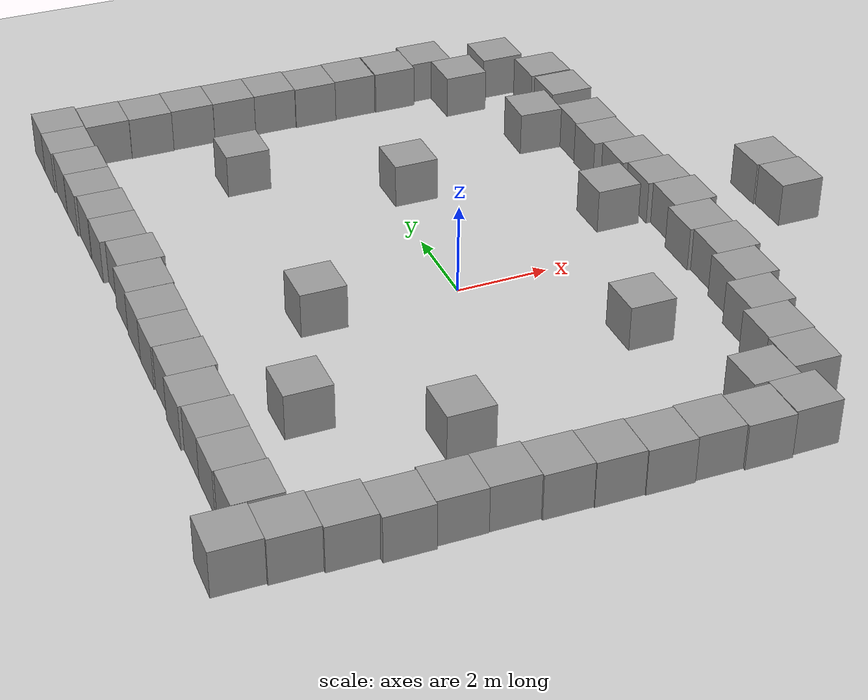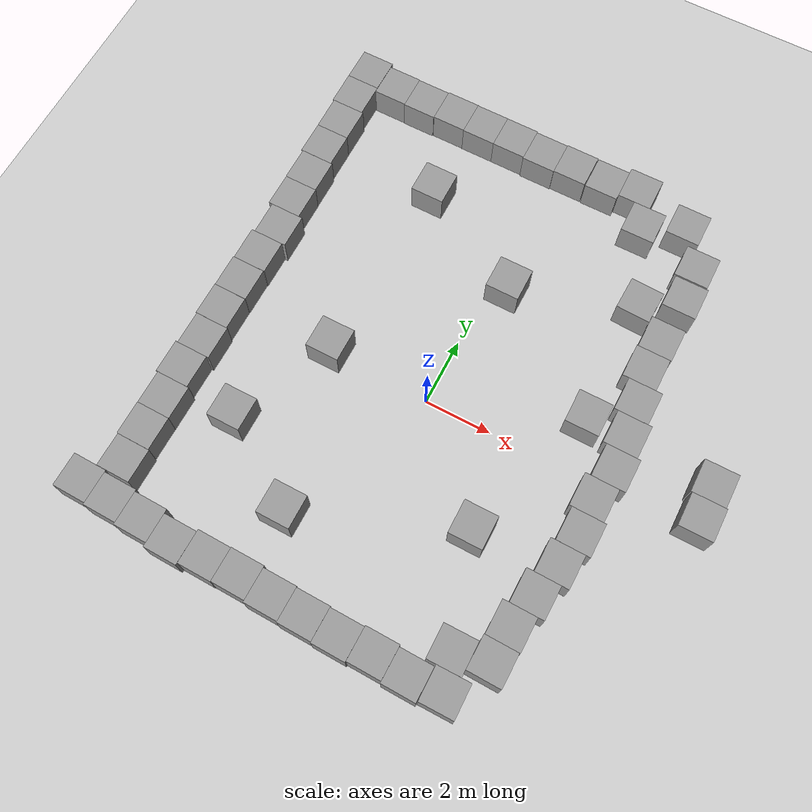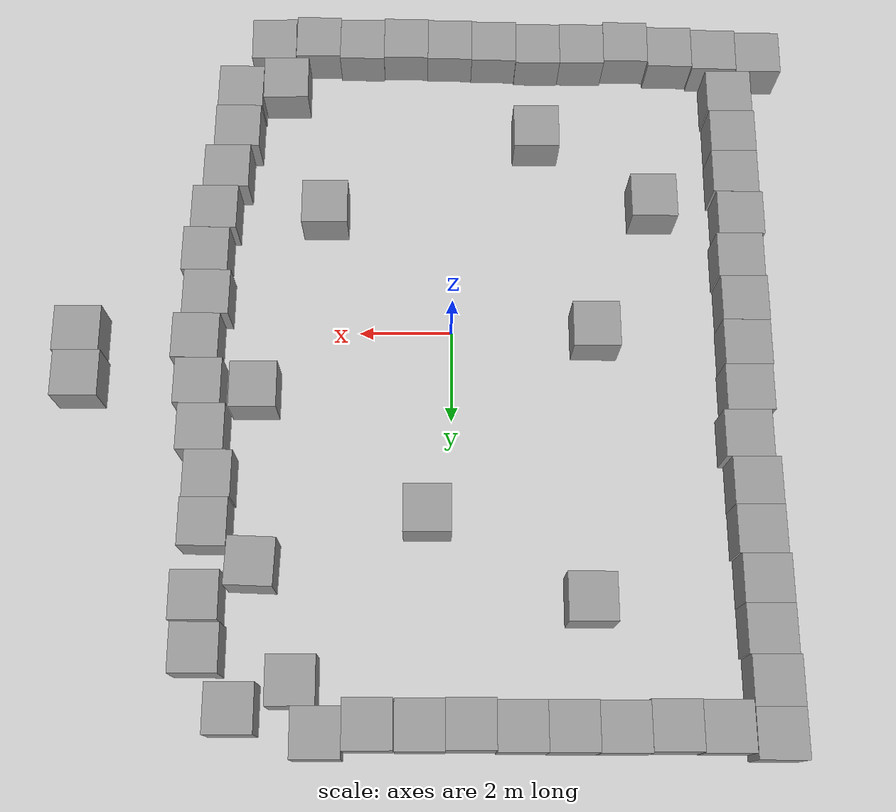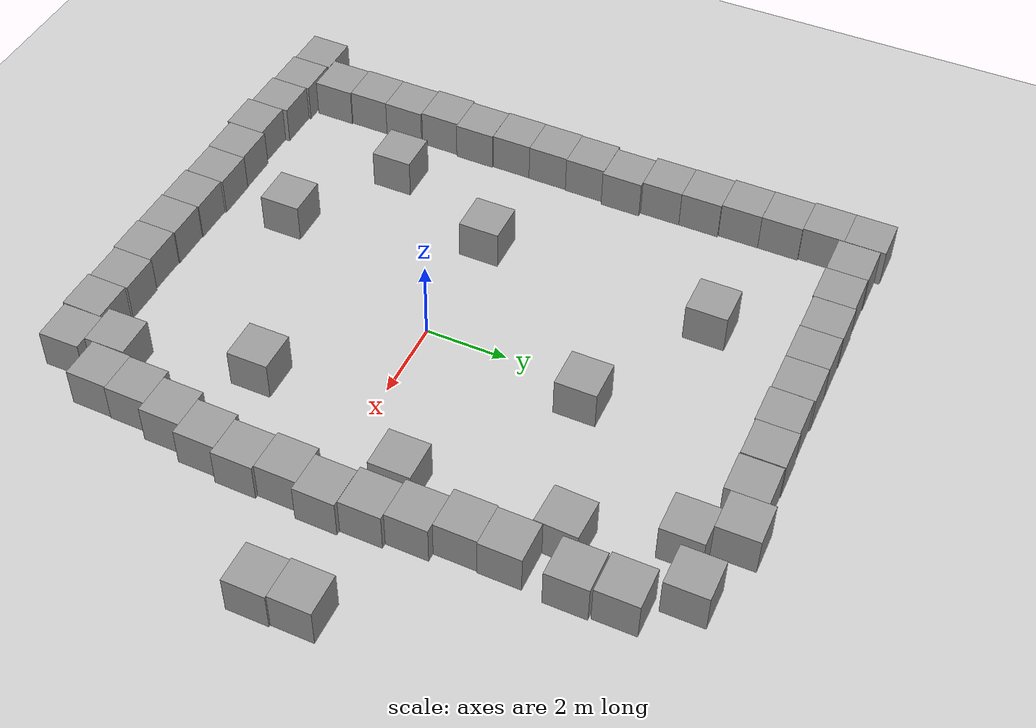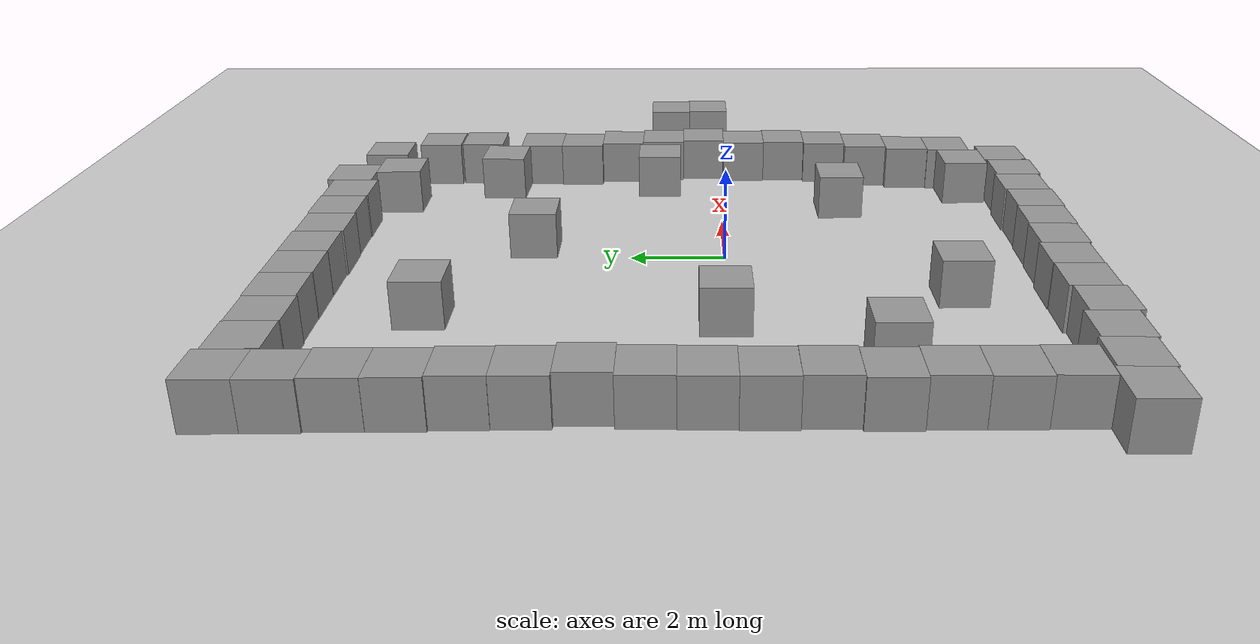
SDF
<sdf version="1.7">
 <world name="default">
  <light name="sun" type="directional">
   <pose>0 0 10 0 -0 0</pose>
   <diffuse>0.8 0.8 0.8 1</diffuse>
   <specular>0.2 0.2 0.2 1</specular>
   <attenuation>
    <range>1000</range>
    <constant>0.9</constant>
    <linear>0.01</linear>
    <quadratic>0.001</quadratic>
   </attenuation>
   <direction>-0.5 0.1 -0.9</direction>
   <spot><inner_angle>0</inner_angle><outer_angle>0</outer_angle><falloff>0</falloff></spot>
  </light>
  <model name="ground_plane">
   <static>1</static>
   <link name="link">
    <collision name="collision">
     <geometry><plane><normal>0 0 1</normal><size>100 100</size></plane></geometry>
     <surface><friction><ode><mu>100</mu><mu2>50</mu2></ode></friction></surface>
    </collision>
    <visual name="visual">
     <cast_shadows>0</cast_shadows>
     <geometry><plane><normal>0 0 1</normal><size>100 100</size></plane></geometry>
     <material>
      <script><uri>file://media/materials/scripts/gazebo.material</uri><name>Gazebo/Grey</name></script>
     </material>
    </visual>
   </link>
  </model>
  <gravity>0 0 -9.8</gravity>
  <magnetic_field>6e-06 2.3e-05 -4.2e-05</magnetic_field>
  <atmosphere type="adiabatic"/>
  <physics type="ode">
   <max_step_size>0.001</max_step_size>
   <real_time_factor>1</real_time_factor>
   <real_time_update_rate>1000</real_time_update_rate>
  </physics>
  <scene><ambient>0.4 0.4 0.4 1</ambient><background>0.7 0.7 0.7 1</background><shadows>1</shadows></scene>
  <spherical_coordinates>
   <surface_model>EARTH_WGS84</surface_model>
   <latitude_deg>0</latitude_deg>
   <longitude_deg>0</longitude_deg>
   <elevation>0</elevation>
   <heading_deg>0</heading_deg>
  </spherical_coordinates>
  <model name="unit_box">
   <pose>5.07803 4.38607 0.5 0 0 -0.006911</pose>
   <link name="link">
    <inertial>
     <mass>1</mass>
     <inertia>
      <ixx>0.166667</ixx>
      <ixy>0</ixy>
      <ixz>0</ixz>
      <iyy>0.166667</iyy>
      <iyz>0</iyz>
      <izz>0.166667</izz>
     </inertia>
    </inertial>
    <collision name="collision"><geometry><box><size>1 1 1</size></box></geometry></collision>
    <visual name="visual">
     <geometry><box><size>1 1 1</size></box></geometry>
     <material>
      <script><name>Gazebo/Grey</name><uri>file://media/materials/scripts/gazebo.material</uri></script>
     </material>
    </visual>
   </link>
  </model>
  <model name="unit_box_0">
   <pose>4.18374 1.45836 0.499995 1e-05 -0 0</pose>
   <link name="link">
    <inertial>
     <mass>1</mass>
     <inertia>
      <ixx>0.166667</ixx>
      <ixy>0</ixy>
      <ixz>0</ixz>
      <iyy>0.166667</iyy>
      <iyz>0</iyz>
      <izz>0.166667</izz>
     </inertia>
    </inertial>
    <collision name="collision"><geometry><box><size>1 1 1</size></box></geometry></collision>
    <visual name="visual">
     <geometry><box><size>1 1 1</size></box></geometry>
     <material>
      <script><name>Gazebo/Grey</name><uri>file://media/materials/scripts/gazebo.material</uri></script>
     </material>
    </visual>
   </link>
  </model>
  <model name="unit_box_1">
   <pose>0.519176 4.09169 0.499995 0 1e-05 0</pose>
   <link name="link">
    <inertial>
     <mass>1</mass>
     <inertia>
      <ixx>0.166667</ixx>
      <ixy>0</ixy>
      <ixz>0</ixz>
      <iyy>0.166667</iyy>
      <iyz>0</iyz>
      <izz>0.166667</izz>
     </inertia>
    </inertial>
    <collision name="collision"><geometry><box><size>1 1 1</size></box></geometry></collision>
    <visual name="visual">
     <geometry><box><size>1 1 1</size></box></geometry>
     <material>
      <script><name>Gazebo/Grey</name><uri>file://media/materials/scripts/gazebo.material</uri></script>
     </material>
    </visual>
   </link>
  </model>
  <model name="unit_box_2">
   <pose>3.19047 7.52255 0.499995 0 -1e-05 0.005996</pose>
   <link name="link">
    <inertial>
     <mass>1</mass>
     <inertia>
      <ixx>0.166667</ixx>
      <ixy>0</ixy>
      <ixz>0</ixz>
      <iyy>0.166667</iyy>
      <iyz>0</iyz>
      <izz>0.166667</izz>
     </inertia>
    </inertial>
    <collision name="collision"><geometry><box><size>1 1 1</size></box></geometry></collision>
    <visual name="visual">
     <geometry><box><size>1 1 1</size></box></geometry>
     <material>
      <script><name>Gazebo/Grey</name><uri>file://media/materials/scripts/gazebo.material</uri></script>
     </material>
    </visual>
   </link>
  </model>
  <model name="unit_box_3">
   <pose>2.78532 -2.74964 0.499995 0 1e-05 0</pose>
   <link name="link">
    <inertial>
     <mass>1</mass>
     <inertia>
      <ixx>0.166667</ixx>
      <ixy>0</ixy>
      <ixz>0</ixz>
      <iyy>0.166667</iyy>
      <iyz>0</iyz>
      <izz>0.166667</izz>
     </inertia>
    </inertial>
    <collision name="collision"><geometry><box><size>1 1 1</size></box></geometry></collision>
    <visual name="visual">
     <geometry><box><size>1 1 1</size></box></geometry>
     <material>
      <script><name>Gazebo/Grey</name><uri>file://media/materials/scripts/gazebo.material</uri></script>
     </material>
    </visual>
   </link>
  </model>
  <model name="unit_box_4">
   <pose>-3.08142 0.097012 0.499995 1e-05 -0 0</pose>
   <link name="link">
    <inertial>
     <mass>1</mass>
     <inertia>
      <ixx>0.166667</ixx>
      <ixy>0</ixy>
      <ixz>0</ixz>
      <iyy>0.166667</iyy>
      <iyz>0</iyz>
      <izz>0.166667</izz>
     </inertia>
    </inertial>
    <collision name="collision"><geometry><box><size>1 1 1</size></box></geometry></collision>
    <visual name="visual">
     <geometry><box><size>1 1 1</size></box></geometry>
     <material>
      <script><name>Gazebo/Grey</name><uri>file://media/materials/scripts/gazebo.material</uri></script>
     </material>
    </visual>
   </link>
  </model>
  <model name="unit_box_5">
   <pose>-1.9006 -4.60632 0.499995 0 1e-05 0</pose>
   <link name="link">
    <inertial>
     <mass>1</mass>
     <inertia>
      <ixx>0.166667</ixx>
      <ixy>0</ixy>
      <ixz>0</ixz>
      <iyy>0.166667</iyy>
      <iyz>0</iyz>
      <izz>0.166667</izz>
     </inertia>
    </inertial>
    <collision name="collision"><geometry><box><size>1 1 1</size></box></geometry></collision>
    <visual name="visual">
     <geometry><box><size>1 1 1</size></box></geometry>
     <material>
      <script><name>Gazebo/Grey</name><uri>file://media/materials/scripts/gazebo.material</uri></script>
     </material>
    </visual>
   </link>
  </model>
  <model name="unit_box_6">
   <pose>7.93637 1.21988 0.499995 0 1e-05 0.001074</pose>
   <link name="link">
    <inertial>
     <mass>1</mass>
     <inertia>
      <ixx>0.166667</ixx>
      <ixy>0</ixy>
      <ixz>0</ixz>
      <iyy>0.166667</iyy>
      <iyz>0</iyz>
      <izz>0.166667</izz>
     </inertia>
    </inertial>
    <collision name="collision"><geometry><box><size>1 1 1</size></box></geometry></collision>
    <visual name="visual">
     <geometry><box><size>1 1 1</size></box></geometry>
     <material>
      <script><name>Gazebo/Grey</name><uri>file://media/materials/scripts/gazebo.material</uri></script>
     </material>
    </visual>
   </link>
  </model>
  <model name="unit_box_7">
   <pose>-6.14448 2.50584 0.5 0 0 -0.002194</pose>
   <link name="link">
    <inertial>
     <mass>1</mass>
     <inertia>
      <ixx>0.166667</ixx>
      <ixy>0</ixy>
      <ixz>0</ixz>
      <iyy>0.166667</iyy>
      <iyz>0</iyz>
      <izz>0.166667</izz>
     </inertia>
    </inertial>
    <collision name="collision"><geometry><box><size>1 1 1</size></box></geometry></collision>
    <visual name="visual">
     <geometry><box><size>1 1 1</size></box></geometry>
     <material>
      <script><name>Gazebo/Grey</name><uri>file://media/materials/scripts/gazebo.material</uri></script>
     </material>
    </visual>
   </link>
  </model>
  <model name="unit_box_8">
   <pose>-4.44764 -2.91175 0.499995 1e-05 -0 0</pose>
   <link name="link">
    <inertial>
     <mass>1</mass>
     <inertia>
      <ixx>0.166667</ixx>
      <ixy>0</ixy>
      <ixz>0</ixz>
      <iyy>0.166667</iyy>
      <iyz>0</iyz>
      <izz>0.166667</izz>
     </inertia>
    </inertial>
    <collision name="collision"><geometry><box><size>1 1 1</size></box></geometry></collision>
    <visual name="visual">
     <geometry><box><size>1 1 1</size></box></geometry>
     <material>
      <script><name>Gazebo/Grey</name><uri>file://media/materials/scripts/gazebo.material</uri></script>
     </material>
    </visual>
   </link>
  </model>
  <model name="unit_box_9">
   <pose>2.02624 -6.81898 0.5 0 0 -0.011447</pose>
   <link name="link">
    <inertial>
     <mass>1</mass>
     <inertia>
      <ixx>0.166667</ixx>
      <ixy>0</ixy>
      <ixz>0</ixz>
      <iyy>0.166667</iyy>
      <iyz>0</iyz>
      <izz>0.166667</izz>
     </inertia>
    </inertial>
    <collision name="collision"><geometry><box><size>1 1 1</size></box></geometry></collision>
    <visual name="visual">
     <geometry><box><size>1 1 1</size></box></geometry>
     <material>
      <script><name>Gazebo/Grey</name><uri>file://media/materials/scripts/gazebo.material</uri></script>
     </material>
    </visual>
   </link>
  </model>
  <model name="unit_box_10">
   <pose>-2.79476 5.8829 0.499995 -1e-05 -0 -0</pose>
   <link name="link">
    <inertial>
     <mass>1</mass>
     <inertia>
      <ixx>0.166667</ixx>
      <ixy>0</ixy>
      <ixz>0</ixz>
      <iyy>0.166667</iyy>
      <iyz>0</iyz>
      <izz>0.166667</izz>
     </inertia>
    </inertial>
    <collision name="collision"><geometry><box><size>1 1 1</size></box></geometry></collision>
    <visual name="visual">
     <geometry><box><size>1 1 1</size></box></geometry>
     <material>
      <script><name>Gazebo/Grey</name><uri>file://media/materials/scripts/gazebo.material</uri></script>
     </material>
    </visual>
   </link>
  </model>
  <model name="unit_box_11">
   <pose>-6.35236 8.50665 0.499995 1e-05 0 -0.001378</pose>
   <link name="link">
    <inertial>
     <mass>1</mass>
     <inertia>
      <ixx>0.166667</ixx>
      <ixy>0</ixy>
      <ixz>0</ixz>
      <iyy>0.166667</iyy>
      <iyz>0</iyz>
      <izz>0.166667</izz>
     </inertia>
    </inertial>
    <collision name="collision"><geometry><box><size>1 1 1</size></box></geometry></collision>
    <visual name="visual">
     <geometry><box><size>1 1 1</size></box></geometry>
     <material>
      <script><name>Gazebo/Grey</name><uri>file://media/materials/scripts/gazebo.material</uri></script>
     </material>
    </visual>
   </link>
  </model>
  <model name="unit_box_12">
   <pose>-5.34507 8.37988 0.499995 -0 1e-05 0.00121</pose>
   <link name="link">
    <inertial>
     <mass>1</mass>
     <inertia>
      <ixx>0.166667</ixx>
      <ixy>0</ixy>
      <ixz>0</ixz>
      <iyy>0.166667</iyy>
      <iyz>0</iyz>
      <izz>0.166667</izz>
     </inertia>
    </inertial>
    <collision name="collision"><geometry><box><size>1 1 1</size></box></geometry></collision>
    <visual name="visual">
     <geometry><box><size>1 1 1</size></box></geometry>
     <material>
      <script><name>Gazebo/Grey</name><uri>file://media/materials/scripts/gazebo.material</uri></script>
     </material>
    </visual>
   </link>
  </model>
  <model name="unit_box_13">
   <pose>-4.34506 8.36606 0.499995 -0 -1e-05 0.001209</pose>
   <link name="link">
    <inertial>
     <mass>1</mass>
     <inertia>
      <ixx>0.166667</ixx>
      <ixy>0</ixy>
      <ixz>0</ixz>
      <iyy>0.166667</iyy>
      <iyz>0</iyz>
      <izz>0.166667</izz>
     </inertia>
    </inertial>
    <collision name="collision"><geometry><box><size>1 1 1</size></box></geometry></collision>
    <visual name="visual">
     <geometry><box><size>1 1 1</size></box></geometry>
     <material>
      <script><name>Gazebo/Grey</name><uri>file://media/materials/scripts/gazebo.material</uri></script>
     </material>
    </visual>
   </link>
  </model>
  <model name="unit_box_14">
   <pose>-6.35338 7.50664 0.499995 1e-05 -0 -0.0014</pose>
   <link name="link">
    <inertial>
     <mass>1</mass>
     <inertia>
      <ixx>0.166667</ixx>
      <ixy>0</ixy>
      <ixz>0</ixz>
      <iyy>0.166667</iyy>
      <iyz>0</iyz>
      <izz>0.166667</izz>
     </inertia>
    </inertial>
    <collision name="collision"><geometry><box><size>1 1 1</size></box></geometry></collision>
    <visual name="visual">
     <geometry><box><size>1 1 1</size></box></geometry>
     <material>
      <script><name>Gazebo/Grey</name><uri>file://media/materials/scripts/gazebo.material</uri></script>
     </material>
    </visual>
   </link>
  </model>
  <model name="unit_box_15">
   <pose>-6.31125 6.50658 0.499995 -1e-05 -0 -0.001412</pose>
   <link name="link">
    <inertial>
     <mass>1</mass>
     <inertia>
      <ixx>0.166667</ixx>
      <ixy>0</ixy>
      <ixz>0</ixz>
      <iyy>0.166667</iyy>
      <iyz>0</iyz>
      <izz>0.166667</izz>
     </inertia>
    </inertial>
    <collision name="collision"><geometry><box><size>1 1 1</size></box></geometry></collision>
    <visual name="visual">
     <geometry><box><size>1 1 1</size></box></geometry>
     <material>
      <script><name>Gazebo/Grey</name><uri>file://media/materials/scripts/gazebo.material</uri></script>
     </material>
    </visual>
   </link>
  </model>
  <model name="unit_box_16">
   <pose>-6.30878 5.50636 0.499995 -1e-05 -0 -0.001823</pose>
   <link name="link">
    <inertial>
     <mass>1</mass>
     <inertia>
      <ixx>0.166667</ixx>
      <ixy>0</ixy>
      <ixz>0</ixz>
      <iyy>0.166667</iyy>
      <iyz>0</iyz>
      <izz>0.166667</izz>
     </inertia>
    </inertial>
    <collision name="collision"><geometry><box><size>1 1 1</size></box></geometry></collision>
    <visual name="visual">
     <geometry><box><size>1 1 1</size></box></geometry>
     <material>
      <script><name>Gazebo/Grey</name><uri>file://media/materials/scripts/gazebo.material</uri></script>
     </material>
    </visual>
   </link>
  </model>
  <model name="unit_box_17">
   <pose>-6.26191 4.5062 0.499995 1e-05 -0 -0.001945</pose>
   <link name="link">
    <inertial>
     <mass>1</mass>
     <inertia>
      <ixx>0.166667</ixx>
      <ixy>0</ixy>
      <ixz>0</ixz>
      <iyy>0.166667</iyy>
      <iyz>0</iyz>
      <izz>0.166667</izz>
     </inertia>
    </inertial>
    <collision name="collision"><geometry><box><size>1 1 1</size></box></geometry></collision>
    <visual name="visual">
     <geometry><box><size>1 1 1</size></box></geometry>
     <material>
      <script><name>Gazebo/Grey</name><uri>file://media/materials/scripts/gazebo.material</uri></script>
     </material>
    </visual>
   </link>
  </model>
  <model name="unit_box_18">
   <pose>-6.25647 3.50617 0.499995 -0 -1e-05 -0.001986</pose>
   <link name="link">
    <inertial>
     <mass>1</mass>
     <inertia>
      <ixx>0.166667</ixx>
      <ixy>0</ixy>
      <ixz>0</ixz>
      <iyy>0.166667</iyy>
      <iyz>0</iyz>
      <izz>0.166667</izz>
     </inertia>
    </inertial>
    <collision name="collision"><geometry><box><size>1 1 1</size></box></geometry></collision>
    <visual name="visual">
     <geometry><box><size>1 1 1</size></box></geometry>
     <material>
      <script><name>Gazebo/Grey</name><uri>file://media/materials/scripts/gazebo.material</uri></script>
     </material>
    </visual>
   </link>
  </model>
  <model name="unit_box_19">
   <pose>-3.345 8.38909 0.499995 0 1e-05 0.001208</pose>
   <link name="link">
    <inertial>
     <mass>1</mass>
     <inertia>
      <ixx>0.166667</ixx>
      <ixy>0</ixy>
      <ixz>0</ixz>
      <iyy>0.166667</iyy>
      <iyz>0</iyz>
      <izz>0.166667</izz>
     </inertia>
    </inertial>
    <collision name="collision"><geometry><box><size>1 1 1</size></box></geometry></collision>
    <visual name="visual">
     <geometry><box><size>1 1 1</size></box></geometry>
     <material>
      <script><name>Gazebo/Grey</name><uri>file://media/materials/scripts/gazebo.material</uri></script>
     </material>
    </visual>
   </link>
  </model>
  <model name="unit_box_20">
   <pose>-2.34495 8.38057 0.499995 0 -1e-05 0.001129</pose>
   <link name="link">
    <inertial>
     <mass>1</mass>
     <inertia>
      <ixx>0.166667</ixx>
      <ixy>0</ixy>
      <ixz>0</ixz>
      <iyy>0.166667</iyy>
      <iyz>0</iyz>
      <izz>0.166667</izz>
     </inertia>
    </inertial>
    <collision name="collision"><geometry><box><size>1 1 1</size></box></geometry></collision>
    <visual name="visual">
     <geometry><box><size>1 1 1</size></box></geometry>
     <material>
      <script><name>Gazebo/Grey</name><uri>file://media/materials/scripts/gazebo.material</uri></script>
     </material>
    </visual>
   </link>
  </model>
  <model name="unit_box_21">
   <pose>-1.34493 8.37894 0.499995 -1e-05 -0 0.001142</pose>
   <link name="link">
    <inertial>
     <mass>1</mass>
     <inertia>
      <ixx>0.166667</ixx>
      <ixy>0</ixy>
      <ixz>0</ixz>
      <iyy>0.166667</iyy>
      <iyz>0</iyz>
      <izz>0.166667</izz>
     </inertia>
    </inertial>
    <collision name="collision"><geometry><box><size>1 1 1</size></box></geometry></collision>
    <visual name="visual">
     <geometry><box><size>1 1 1</size></box></geometry>
     <material>
      <script><name>Gazebo/Grey</name><uri>file://media/materials/scripts/gazebo.material</uri></script>
     </material>
    </visual>
   </link>
  </model>
  <model name="unit_box_22">
   <pose>-0.344834 8.34619 0.499995 0 -1e-05 0.00111</pose>
   <link name="link">
    <inertial>
     <mass>1</mass>
     <inertia>
      <ixx>0.166667</ixx>
      <ixy>0</ixy>
      <ixz>0</ixz>
      <iyy>0.166667</iyy>
      <iyz>0</iyz>
      <izz>0.166667</izz>
     </inertia>
    </inertial>
    <collision name="collision"><geometry><box><size>1 1 1</size></box></geometry></collision>
    <visual name="visual">
     <geometry><box><size>1 1 1</size></box></geometry>
     <material>
      <script><name>Gazebo/Grey</name><uri>file://media/materials/scripts/gazebo.material</uri></script>
     </material>
    </visual>
   </link>
  </model>
  <model name="unit_box_23">
   <pose>0.655273 8.36693 0.499995 0 1e-05 0.000883</pose>
   <link name="link">
    <inertial>
     <mass>1</mass>
     <inertia>
      <ixx>0.166667</ixx>
      <ixy>0</ixy>
      <ixz>0</ixz>
      <iyy>0.166667</iyy>
      <iyz>0</iyz>
      <izz>0.166667</izz>
     </inertia>
    </inertial>
    <collision name="collision"><geometry><box><size>1 1 1</size></box></geometry></collision>
    <visual name="visual">
     <geometry><box><size>1 1 1</size></box></geometry>
     <material>
      <script><name>Gazebo/Grey</name><uri>file://media/materials/scripts/gazebo.material</uri></script>
     </material>
    </visual>
   </link>
  </model>
  <model name="unit_box_24">
   <pose>-6.23797 1.50548 0.5 0 0 -0.003565</pose>
   <link name="link">
    <inertial>
     <mass>1</mass>
     <inertia>
      <ixx>0.166667</ixx>
      <ixy>0</ixy>
      <ixz>0</ixz>
      <iyy>0.166667</iyy>
      <iyz>0</iyz>
      <izz>0.166667</izz>
     </inertia>
    </inertial>
    <collision name="collision"><geometry><box><size>1 1 1</size></box></geometry></collision>
    <visual name="visual">
     <geometry><box><size>1 1 1</size></box></geometry>
     <material>
      <script><name>Gazebo/Grey</name><uri>file://media/materials/scripts/gazebo.material</uri></script>
     </material>
    </visual>
   </link>
  </model>
  <model name="unit_box_25">
   <pose>-6.26261 0.5053 0.499995 0 -1e-05 -0.004099</pose>
   <link name="link">
    <inertial>
     <mass>1</mass>
     <inertia>
      <ixx>0.166667</ixx>
      <ixy>0</ixy>
      <ixz>0</ixz>
      <iyy>0.166667</iyy>
      <iyz>0</iyz>
      <izz>0.166667</izz>
     </inertia>
    </inertial>
    <collision name="collision"><geometry><box><size>1 1 1</size></box></geometry></collision>
    <visual name="visual">
     <geometry><box><size>1 1 1</size></box></geometry>
     <material>
      <script><name>Gazebo/Grey</name><uri>file://media/materials/scripts/gazebo.material</uri></script>
     </material>
    </visual>
   </link>
  </model>
  <model name="unit_box_26">
   <pose>-6.27569 -0.494777 0.499995 -0 1e-05 -0.00434</pose>
   <link name="link">
    <inertial>
     <mass>1</mass>
     <inertia>
      <ixx>0.166667</ixx>
      <ixy>0</ixy>
      <ixz>0</ixz>
      <iyy>0.166667</iyy>
      <iyz>0</iyz>
      <izz>0.166667</izz>
     </inertia>
    </inertial>
    <collision name="collision"><geometry><box><size>1 1 1</size></box></geometry></collision>
    <visual name="visual">
     <geometry><box><size>1 1 1</size></box></geometry>
     <material>
      <script><name>Gazebo/Grey</name><uri>file://media/materials/scripts/gazebo.material</uri></script>
     </material>
    </visual>
   </link>
  </model>
  <model name="unit_box_27">
   <pose>-6.25108 -1.49608 0.499995 0 1e-05 -0.006721</pose>
   <link name="link">
    <inertial>
     <mass>1</mass>
     <inertia>
      <ixx>0.166667</ixx>
      <ixy>0</ixy>
      <ixz>0</ixz>
      <iyy>0.166667</iyy>
      <iyz>0</iyz>
      <izz>0.166667</izz>
     </inertia>
    </inertial>
    <collision name="collision"><geometry><box><size>1 1 1</size></box></geometry></collision>
    <visual name="visual">
     <geometry><box><size>1 1 1</size></box></geometry>
     <material>
      <script><name>Gazebo/Grey</name><uri>file://media/materials/scripts/gazebo.material</uri></script>
     </material>
    </visual>
   </link>
  </model>
  <model name="unit_box_28">
   <pose>-6.31618 -2.49604 0.499995 0 -1e-05 -0.007548</pose>
   <link name="link">
    <inertial>
     <mass>1</mass>
     <inertia>
      <ixx>0.166667</ixx>
      <ixy>0</ixy>
      <ixz>0</ixz>
      <iyy>0.166667</iyy>
      <iyz>0</iyz>
      <izz>0.166667</izz>
     </inertia>
    </inertial>
    <collision name="collision"><geometry><box><size>1 1 1</size></box></geometry></collision>
    <visual name="visual">
     <geometry><box><size>1 1 1</size></box></geometry>
     <material>
      <script><name>Gazebo/Grey</name><uri>file://media/materials/scripts/gazebo.material</uri></script>
     </material>
    </visual>
   </link>
  </model>
  <model name="unit_box_29">
   <pose>-6.26512 -3.49682 0.5 -0 -0 -0.008269</pose>
   <link name="link">
    <inertial>
     <mass>1</mass>
     <inertia>
      <ixx>0.166667</ixx>
      <ixy>0</ixy>
      <ixz>0</ixz>
      <iyy>0.166667</iyy>
      <iyz>0</iyz>
      <izz>0.166667</izz>
     </inertia>
    </inertial>
    <collision name="collision"><geometry><box><size>1 1 1</size></box></geometry></collision>
    <visual name="visual">
     <geometry><box><size>1 1 1</size></box></geometry>
     <material>
      <script><name>Gazebo/Grey</name><uri>file://media/materials/scripts/gazebo.material</uri></script>
     </material>
    </visual>
   </link>
  </model>
  <model name="unit_box_30">
   <pose>-6.27683 -4.4968 0.499995 0 -1e-05 -0.008355</pose>
   <link name="link">
    <inertial>
     <mass>1</mass>
     <inertia>
      <ixx>0.166667</ixx>
      <ixy>0</ixy>
      <ixz>0</ixz>
      <iyy>0.166667</iyy>
      <iyz>0</iyz>
      <izz>0.166667</izz>
     </inertia>
    </inertial>
    <collision name="collision"><geometry><box><size>1 1 1</size></box></geometry></collision>
    <visual name="visual">
     <geometry><box><size>1 1 1</size></box></geometry>
     <material>
      <script><name>Gazebo/Grey</name><uri>file://media/materials/scripts/gazebo.material</uri></script>
     </material>
    </visual>
   </link>
  </model>
  <model name="unit_box_31">
   <pose>-6.25537 -5.49731 0.499995 0 -1e-05 -0.008938</pose>
   <link name="link">
    <inertial>
     <mass>1</mass>
     <inertia>
      <ixx>0.166667</ixx>
      <ixy>0</ixy>
      <ixz>0</ixz>
      <iyy>0.166667</iyy>
      <iyz>0</iyz>
      <izz>0.166667</izz>
     </inertia>
    </inertial>
    <collision name="collision"><geometry><box><size>1 1 1</size></box></geometry></collision>
    <visual name="visual">
     <geometry><box><size>1 1 1</size></box></geometry>
     <material>
      <script><name>Gazebo/Grey</name><uri>file://media/materials/scripts/gazebo.material</uri></script>
     </material>
    </visual>
   </link>
  </model>
  <model name="unit_box_32">
   <pose>-6.97157 -6.49638 0.5 0 0 -0.014541</pose>
   <link name="link">
    <inertial>
     <mass>1</mass>
     <inertia>
      <ixx>0.166667</ixx>
      <ixy>0</ixy>
      <ixz>0</ixz>
      <iyy>0.166667</iyy>
      <iyz>0</iyz>
      <izz>0.166667</izz>
     </inertia>
    </inertial>
    <collision name="collision"><geometry><box><size>1 1 1</size></box></geometry></collision>
    <visual name="visual">
     <geometry><box><size>1 1 1</size></box></geometry>
     <material>
      <script><name>Gazebo/Grey</name><uri>file://media/materials/scripts/gazebo.material</uri></script>
     </material>
    </visual>
   </link>
  </model>
  <model name="unit_box_33">
   <pose>-4.97329 -6.63109 0.499995 0 1e-05 -0.01452</pose>
   <link name="link">
    <inertial>
     <mass>1</mass>
     <inertia>
      <ixx>0.166667</ixx>
      <ixy>0</ixy>
      <ixz>0</ixz>
      <iyy>0.166667</iyy>
      <iyz>0</iyz>
      <izz>0.166667</izz>
     </inertia>
    </inertial>
    <collision name="collision"><geometry><box><size>1 1 1</size></box></geometry></collision>
    <visual name="visual">
     <geometry><box><size>1 1 1</size></box></geometry>
     <material>
      <script><name>Gazebo/Grey</name><uri>file://media/materials/scripts/gazebo.material</uri></script>
     </material>
    </visual>
   </link>
  </model>
  <model name="unit_box_34">
   <pose>-5.9724 -6.56116 0.5 0 0 -0.014535</pose>
   <link name="link">
    <inertial>
     <mass>1</mass>
     <inertia>
      <ixx>0.166667</ixx>
      <ixy>0</ixy>
      <ixz>0</ixz>
      <iyy>0.166667</iyy>
      <iyz>0</iyz>
      <izz>0.166667</izz>
     </inertia>
    </inertial>
    <collision name="collision"><geometry><box><size>1 1 1</size></box></geometry></collision>
    <visual name="visual">
     <geometry><box><size>1 1 1</size></box></geometry>
     <material>
      <script><name>Gazebo/Grey</name><uri>file://media/materials/scripts/gazebo.material</uri></script>
     </material>
    </visual>
   </link>
  </model>
  <model name="unit_box_35">
   <pose>-3.97505 -6.76352 0.5 0 0 -0.014389</pose>
   <link name="link">
    <inertial>
     <mass>1</mass>
     <inertia>
      <ixx>0.166667</ixx>
      <ixy>0</ixy>
      <ixz>0</ixz>
      <iyy>0.166667</iyy>
      <iyz>0</iyz>
      <izz>0.166667</izz>
     </inertia>
    </inertial>
    <collision name="collision"><geometry><box><size>1 1 1</size></box></geometry></collision>
    <visual name="visual">
     <geometry><box><size>1 1 1</size></box></geometry>
     <material>
      <script><name>Gazebo/Grey</name><uri>file://media/materials/scripts/gazebo.material</uri></script>
     </material>
    </visual>
   </link>
  </model>
  <model name="unit_box_36">
   <pose>-2.97386 -6.70939 0.5 0 0 -0.013671</pose>
   <link name="link">
    <inertial>
     <mass>1</mass>
     <inertia>
      <ixx>0.166667</ixx>
      <ixy>0</ixy>
      <ixz>0</ixz>
      <iyy>0.166667</iyy>
      <iyz>0</iyz>
      <izz>0.166667</izz>
     </inertia>
    </inertial>
    <collision name="collision"><geometry><box><size>1 1 1</size></box></geometry></collision>
    <visual name="visual">
     <geometry><box><size>1 1 1</size></box></geometry>
     <material>
      <script><name>Gazebo/Grey</name><uri>file://media/materials/scripts/gazebo.material</uri></script>
     </material>
    </visual>
   </link>
  </model>
  <model name="unit_box_37">
   <pose>-1.97374 -6.70968 0.5 -0 -0 -0.013622</pose>
   <link name="link">
    <inertial>
     <mass>1</mass>
     <inertia>
      <ixx>0.166667</ixx>
      <ixy>0</ixy>
      <ixz>0</ixz>
      <iyy>0.166667</iyy>
      <iyz>0</iyz>
      <izz>0.166667</izz>
     </inertia>
    </inertial>
    <collision name="collision"><geometry><box><size>1 1 1</size></box></geometry></collision>
    <visual name="visual">
     <geometry><box><size>1 1 1</size></box></geometry>
     <material>
      <script><name>Gazebo/Grey</name><uri>file://media/materials/scripts/gazebo.material</uri></script>
     </material>
    </visual>
   </link>
  </model>
  <model name="unit_box_38">
   <pose>-0.974359 -6.77204 0.5 -0 -0 -0.013347</pose>
   <link name="link">
    <inertial>
     <mass>1</mass>
     <inertia>
      <ixx>0.166667</ixx>
      <ixy>0</ixy>
      <ixz>0</ixz>
      <iyy>0.166667</iyy>
      <iyz>0</iyz>
      <izz>0.166667</izz>
     </inertia>
    </inertial>
    <collision name="collision"><geometry><box><size>1 1 1</size></box></geometry></collision>
    <visual name="visual">
     <geometry><box><size>1 1 1</size></box></geometry>
     <material>
      <script><name>Gazebo/Grey</name><uri>file://media/materials/scripts/gazebo.material</uri></script>
     </material>
    </visual>
   </link>
  </model>
  <model name="unit_box_39">
   <pose>1.67633 8.35572 0.499995 1e-05 -0 0.00599</pose>
   <link name="link">
    <inertial>
     <mass>1</mass>
     <inertia>
      <ixx>0.166667</ixx>
      <ixy>0</ixy>
      <ixz>0</ixz>
      <iyy>0.166667</iyy>
      <iyz>0</iyz>
      <izz>0.166667</izz>
     </inertia>
    </inertial>
    <collision name="collision"><geometry><box><size>1 1 1</size></box></geometry></collision>
    <visual name="visual">
     <geometry><box><size>1 1 1</size></box></geometry>
     <material>
      <script><name>Gazebo/Grey</name><uri>file://media/materials/scripts/gazebo.material</uri></script>
     </material>
    </visual>
   </link>
  </model>
  <model name="unit_box_40">
   <pose>4.37465 8.06055 0.499995 0 1e-05 0</pose>
   <link name="link">
    <inertial>
     <mass>1</mass>
     <inertia>
      <ixx>0.166667</ixx>
      <ixy>0</ixy>
      <ixz>0</ixz>
      <iyy>0.166667</iyy>
      <iyz>0</iyz>
      <izz>0.166667</izz>
     </inertia>
    </inertial>
    <collision name="collision"><geometry><box><size>1 1 1</size></box></geometry></collision>
    <visual name="visual">
     <geometry><box><size>1 1 1</size></box></geometry>
     <material>
      <script><name>Gazebo/Grey</name><uri>file://media/materials/scripts/gazebo.material</uri></script>
     </material>
    </visual>
   </link>
  </model>
  <model name="unit_box_41">
   <pose>2.6754 8.5195 0.499995 1e-05 0 0.006</pose>
   <link name="link">
    <inertial>
     <mass>1</mass>
     <inertia>
      <ixx>0.166667</ixx>
      <ixy>0</ixy>
      <ixz>0</ixz>
      <iyy>0.166667</iyy>
      <iyz>0</iyz>
      <izz>0.166667</izz>
     </inertia>
    </inertial>
    <collision name="collision"><geometry><box><size>1 1 1</size></box></geometry></collision>
    <visual name="visual">
     <geometry><box><size>1 1 1</size></box></geometry>
     <material>
      <script><name>Gazebo/Grey</name><uri>file://media/materials/scripts/gazebo.material</uri></script>
     </material>
    </visual>
   </link>
  </model>
  <model name="unit_box_42">
   <pose>7.98148 0.219922 0.499995 0 1e-05 0.001081</pose>
   <link name="link">
    <inertial>
     <mass>1</mass>
     <inertia>
      <ixx>0.166667</ixx>
      <ixy>0</ixy>
      <ixz>0</ixz>
      <iyy>0.166667</iyy>
      <iyz>0</iyz>
      <izz>0.166667</izz>
     </inertia>
    </inertial>
    <collision name="collision"><geometry><box><size>1 1 1</size></box></geometry></collision>
    <visual name="visual">
     <geometry><box><size>1 1 1</size></box></geometry>
     <material>
      <script><name>Gazebo/Grey</name><uri>file://media/materials/scripts/gazebo.material</uri></script>
     </material>
    </visual>
   </link>
  </model>
  <model name="unit_box_43">
   <pose>0.025271 -6.80783 0.499995 -1e-05 -0 -0.013312</pose>
   <link name="link">
    <inertial>
     <mass>1</mass>
     <inertia>
      <ixx>0.166667</ixx>
      <ixy>0</ixy>
      <ixz>0</ixz>
      <iyy>0.166667</iyy>
      <iyz>0</iyz>
      <izz>0.166667</izz>
     </inertia>
    </inertial>
    <collision name="collision"><geometry><box><size>1 1 1</size></box></geometry></collision>
    <visual name="visual">
     <geometry><box><size>1 1 1</size></box></geometry>
     <material>
      <script><name>Gazebo/Grey</name><uri>file://media/materials/scripts/gazebo.material</uri></script>
     </material>
    </visual>
   </link>
  </model>
  <model name="unit_box_44">
   <pose>1.02531 -6.8448 0.5 0 -0 -0.012511</pose>
   <link name="link">
    <inertial>
     <mass>1</mass>
     <inertia>
      <ixx>0.166667</ixx>
      <ixy>0</ixy>
      <ixz>0</ixz>
      <iyy>0.166667</iyy>
      <iyz>0</iyz>
      <izz>0.166667</izz>
     </inertia>
    </inertial>
    <collision name="collision"><geometry><box><size>1 1 1</size></box></geometry></collision>
    <visual name="visual">
     <geometry><box><size>1 1 1</size></box></geometry>
     <material>
      <script><name>Gazebo/Grey</name><uri>file://media/materials/scripts/gazebo.material</uri></script>
     </material>
    </visual>
   </link>
  </model>
  <model name="unit_box_45">
   <pose>5.1158 6.90247 0.499995 -1e-05 -0 -0</pose>
   <link name="link">
    <inertial>
     <mass>1</mass>
     <inertia>
      <ixx>0.166667</ixx>
      <ixy>0</ixy>
      <ixz>0</ixz>
      <iyy>0.166667</iyy>
      <iyz>0</iyz>
      <izz>0.166667</izz>
     </inertia>
    </inertial>
    <collision name="collision"><geometry><box><size>1 1 1</size></box></geometry></collision>
    <visual name="visual">
     <geometry><box><size>1 1 1</size></box></geometry>
     <material>
      <script><name>Gazebo/Grey</name><uri>file://media/materials/scripts/gazebo.material</uri></script>
     </material>
    </visual>
   </link>
  </model>
  <model name="unit_box_46">
   <pose>5.1723 5.86458 0.499995 0 1e-05 0</pose>
   <link name="link">
    <inertial>
     <mass>1</mass>
     <inertia>
      <ixx>0.166667</ixx>
      <ixy>0</ixy>
      <ixz>0</ixz>
      <iyy>0.166667</iyy>
      <iyz>0</iyz>
      <izz>0.166667</izz>
     </inertia>
    </inertial>
    <collision name="collision"><geometry><box><size>1 1 1</size></box></geometry></collision>
    <visual name="visual">
     <geometry><box><size>1 1 1</size></box></geometry>
     <material>
      <script><name>Gazebo/Grey</name><uri>file://media/materials/scripts/gazebo.material</uri></script>
     </material>
    </visual>
   </link>
  </model>
  <model name="unit_box_47">
   <pose>5.04128 3.38625 0.499995 0 -1e-05 -0.007012</pose>
   <link name="link">
    <inertial>
     <mass>1</mass>
     <inertia>
      <ixx>0.166667</ixx>
      <ixy>0</ixy>
      <ixz>0</ixz>
      <iyy>0.166667</iyy>
      <iyz>0</iyz>
      <izz>0.166667</izz>
     </inertia>
    </inertial>
    <collision name="collision"><geometry><box><size>1 1 1</size></box></geometry></collision>
    <visual name="visual">
     <geometry><box><size>1 1 1</size></box></geometry>
     <material>
      <script><name>Gazebo/Grey</name><uri>file://media/materials/scripts/gazebo.material</uri></script>
     </material>
    </visual>
   </link>
  </model>
  <model name="unit_box_48">
   <pose>4.08616 5.19051 0.499995 -1e-05 -0 -0.039264</pose>
   <link name="link">
    <inertial>
     <mass>1</mass>
     <inertia>
      <ixx>0.166667</ixx>
      <ixy>0</ixy>
      <ixz>0</ixz>
      <iyy>0.166667</iyy>
      <iyz>0</iyz>
      <izz>0.166667</izz>
     </inertia>
    </inertial>
    <collision name="collision"><geometry><box><size>1 1 1</size></box></geometry></collision>
    <visual name="visual">
     <geometry><box><size>1 1 1</size></box></geometry>
     <material>
      <script><name>Gazebo/Grey</name><uri>file://media/materials/scripts/gazebo.material</uri></script>
     </material>
    </visual>
   </link>
  </model>
  <model name="unit_box_49">
   <pose>5.23504 2.38486 0.499996 0 -7e-06 -0.007015</pose>
   <link name="link">
    <inertial>
     <mass>1</mass>
     <inertia>
      <ixx>0.166667</ixx>
      <ixy>0</ixy>
      <ixz>0</ixz>
      <iyy>0.166667</iyy>
      <iyz>0</iyz>
      <izz>0.166667</izz>
     </inertia>
    </inertial>
    <collision name="collision"><geometry><box><size>1 1 1</size></box></geometry></collision>
    <visual name="visual">
     <geometry><box><size>1 1 1</size></box></geometry>
     <material>
      <script><name>Gazebo/Grey</name><uri>file://media/materials/scripts/gazebo.material</uri></script>
     </material>
    </visual>
   </link>
  </model>
  <model name="unit_box_50">
   <pose>5.34925 1.38392 0.499997 0 6e-06 -0.007247</pose>
   <link name="link">
    <inertial>
     <mass>1</mass>
     <inertia>
      <ixx>0.166667</ixx>
      <ixy>0</ixy>
      <ixz>0</ixz>
      <iyy>0.166667</iyy>
      <iyz>0</iyz>
      <izz>0.166667</izz>
     </inertia>
    </inertial>
    <collision name="collision"><geometry><box><size>1 1 1</size></box></geometry></collision>
    <visual name="visual">
     <geometry><box><size>1 1 1</size></box></geometry>
     <material>
      <script><name>Gazebo/Grey</name><uri>file://media/materials/scripts/gazebo.material</uri></script>
     </material>
    </visual>
   </link>
  </model>
  <model name="unit_box_51">
   <pose>5.44972 0.38122 0.5 -0 1e-06 -0.011146</pose>
   <link name="link">
    <inertial>
     <mass>1</mass>
     <inertia>
      <ixx>0.166667</ixx>
      <ixy>0</ixy>
      <ixz>0</ixz>
      <iyy>0.166667</iyy>
      <iyz>0</iyz>
      <izz>0.166667</izz>
     </inertia>
    </inertial>
    <collision name="collision"><geometry><box><size>1 1 1</size></box></geometry></collision>
    <visual name="visual">
     <geometry><box><size>1 1 1</size></box></geometry>
     <material>
      <script><name>Gazebo/Grey</name><uri>file://media/materials/scripts/gazebo.material</uri></script>
     </material>
    </visual>
   </link>
  </model>
  <model name="unit_box_52">
   <pose>5.27078 -0.616853 0.499997 0 -7e-06 -0.011155</pose>
   <link name="link">
    <inertial>
     <mass>1</mass>
     <inertia>
      <ixx>0.166667</ixx>
      <ixy>0</ixy>
      <ixz>0</ixz>
      <iyy>0.166667</iyy>
      <iyz>0</iyz>
      <izz>0.166667</izz>
     </inertia>
    </inertial>
    <collision name="collision"><geometry><box><size>1 1 1</size></box></geometry></collision>
    <visual name="visual">
     <geometry><box><size>1 1 1</size></box></geometry>
     <material>
      <script><name>Gazebo/Grey</name><uri>file://media/materials/scripts/gazebo.material</uri></script>
     </material>
    </visual>
   </link>
  </model>
  <model name="unit_box_53">
   <pose>5.34107 -1.6177 0.5 0 -0 -0.011155</pose>
   <link name="link">
    <inertial>
     <mass>1</mass>
     <inertia>
      <ixx>0.166667</ixx>
      <ixy>0</ixy>
      <ixz>0</ixz>
      <iyy>0.166667</iyy>
      <iyz>0</iyz>
      <izz>0.166667</izz>
     </inertia>
    </inertial>
    <collision name="collision"><geometry><box><size>1 1 1</size></box></geometry></collision>
    <visual name="visual">
     <geometry><box><size>1 1 1</size></box></geometry>
     <material>
      <script><name>Gazebo/Grey</name><uri>file://media/materials/scripts/gazebo.material</uri></script>
     </material>
    </visual>
   </link>
  </model>
  <model name="unit_box_54">
   <pose>3.02594 -6.88259 0.499961 -0 -0 -0.010719</pose>
   <link name="link">
    <inertial>
     <mass>1</mass>
     <inertia>
      <ixx>0.166667</ixx>
      <ixy>0</ixy>
      <ixz>0</ixz>
      <iyy>0.166667</iyy>
      <iyz>0</iyz>
      <izz>0.166667</izz>
     </inertia>
    </inertial>
    <collision name="collision"><geometry><box><size>1 1 1</size></box></geometry></collision>
    <visual name="visual">
     <geometry><box><size>1 1 1</size></box></geometry>
     <material>
      <script><name>Gazebo/Grey</name><uri>file://media/materials/scripts/gazebo.material</uri></script>
     </material>
    </visual>
   </link>
  </model>
  <model name="unit_box_55">
   <pose>4.03496 -6.82166 0.499995 -0 -1e-05 0.008464</pose>
   <link name="link">
    <inertial>
     <mass>1</mass>
     <inertia>
      <ixx>0.166667</ixx>
      <ixy>0</ixy>
      <ixz>0</ixz>
      <iyy>0.166667</iyy>
      <iyz>0</iyz>
      <izz>0.166667</izz>
     </inertia>
    </inertial>
    <collision name="collision"><geometry><box><size>1 1 1</size></box></geometry></collision>
    <visual name="visual">
     <geometry><box><size>1 1 1</size></box></geometry>
     <material>
      <script><name>Gazebo/Grey</name><uri>file://media/materials/scripts/gazebo.material</uri></script>
     </material>
    </visual>
   </link>
  </model>
  <model name="unit_box_56">
   <pose>5.19818 -2.61656 0.5 -0 -0 -0.012211</pose>
   <link name="link">
    <inertial>
     <mass>1</mass>
     <inertia>
      <ixx>0.166667</ixx>
      <ixy>0</ixy>
      <ixz>0</ixz>
      <iyy>0.166667</iyy>
      <iyz>0</iyz>
      <izz>0.166667</izz>
     </inertia>
    </inertial>
    <collision name="collision"><geometry><box><size>1 1 1</size></box></geometry></collision>
    <visual name="visual">
     <geometry><box><size>1 1 1</size></box></geometry>
     <material>
      <script><name>Gazebo/Grey</name><uri>file://media/materials/scripts/gazebo.material</uri></script>
     </material>
    </visual>
   </link>
  </model>
  <model name="unit_box_57">
   <pose>4.97428 -3.61393 0.499991 0 0 -0.01231</pose>
   <link name="link">
    <inertial>
     <mass>1</mass>
     <inertia>
      <ixx>0.166667</ixx>
      <ixy>0</ixy>
      <ixz>0</ixz>
      <iyy>0.166667</iyy>
      <iyz>0</iyz>
      <izz>0.166667</izz>
     </inertia>
    </inertial>
    <collision name="collision"><geometry><box><size>1 1 1</size></box></geometry></collision>
    <visual name="visual">
     <geometry><box><size>1 1 1</size></box></geometry>
     <material>
      <script><name>Gazebo/Grey</name><uri>file://media/materials/scripts/gazebo.material</uri></script>
     </material>
    </visual>
   </link>
  </model>
  <model name="unit_box_58">
   <pose>4.7785 -4.61159 0.499995 0 1e-05 -0.01231</pose>
   <link name="link">
    <inertial>
     <mass>1</mass>
     <inertia>
      <ixx>0.166667</ixx>
      <ixy>0</ixy>
      <ixz>0</ixz>
      <iyy>0.166667</iyy>
      <iyz>0</iyz>
      <izz>0.166667</izz>
     </inertia>
    </inertial>
    <collision name="collision"><geometry><box><size>1 1 1</size></box></geometry></collision>
    <visual name="visual">
     <geometry><box><size>1 1 1</size></box></geometry>
     <material>
      <script><name>Gazebo/Grey</name><uri>file://media/materials/scripts/gazebo.material</uri></script>
     </material>
    </visual>
   </link>
  </model>
  <model name="unit_box_59">
   <pose>4.74464 -5.61127 0.5 0 0 -0.012298</pose>
   <link name="link">
    <inertial>
     <mass>1</mass>
     <inertia>
      <ixx>0.166667</ixx>
      <ixy>0</ixy>
      <ixz>0</ixz>
      <iyy>0.166667</iyy>
      <iyz>0</iyz>
      <izz>0.166667</izz>
     </inertia>
    </inertial>
    <collision name="collision"><geometry><box><size>1 1 1</size></box></geometry></collision>
    <visual name="visual">
     <geometry><box><size>1 1 1</size></box></geometry>
     <material>
      <script><name>Gazebo/Grey</name><uri>file://media/materials/scripts/gazebo.material</uri></script>
     </material>
    </visual>
   </link>
  </model>
  <model name="unit_box_60">
   <pose>3.73517 -5.82401 0.5 0 -0 0.009089</pose>
   <link name="link">
    <inertial>
     <mass>1</mass>
     <inertia>
      <ixx>0.166667</ixx>
      <ixy>0</ixy>
      <ixz>0</ixz>
      <iyy>0.166667</iyy>
      <iyz>0</iyz>
      <izz>0.166667</izz>
     </inertia>
    </inertial>
    <collision name="collision"><geometry><box><size>1 1 1</size></box></geometry></collision>
    <visual name="visual">
     <geometry><box><size>1 1 1</size></box></geometry>
     <material>
      <script><name>Gazebo/Grey</name><uri>file://media/materials/scripts/gazebo.material</uri></script>
     </material>
    </visual>
   </link>
  </model>
 </world>
</sdf>
